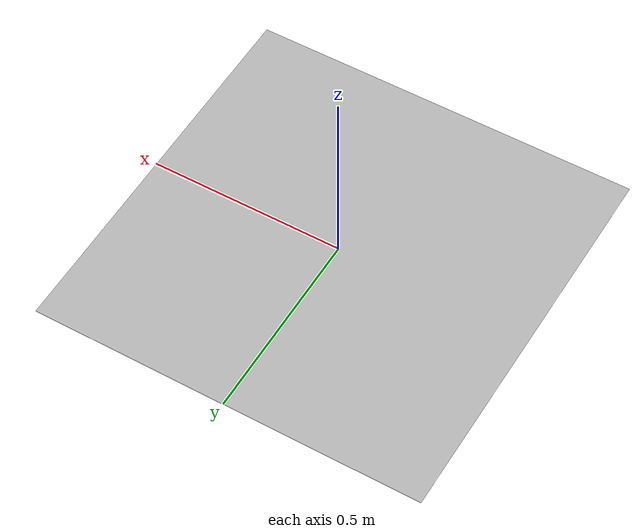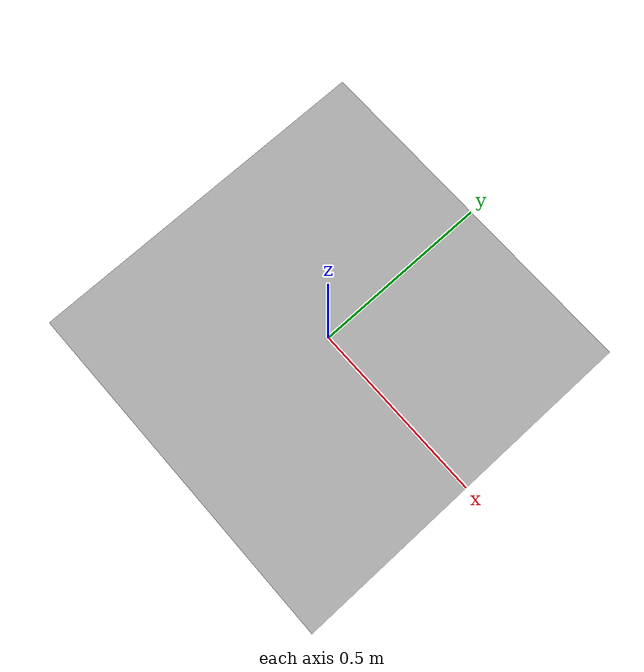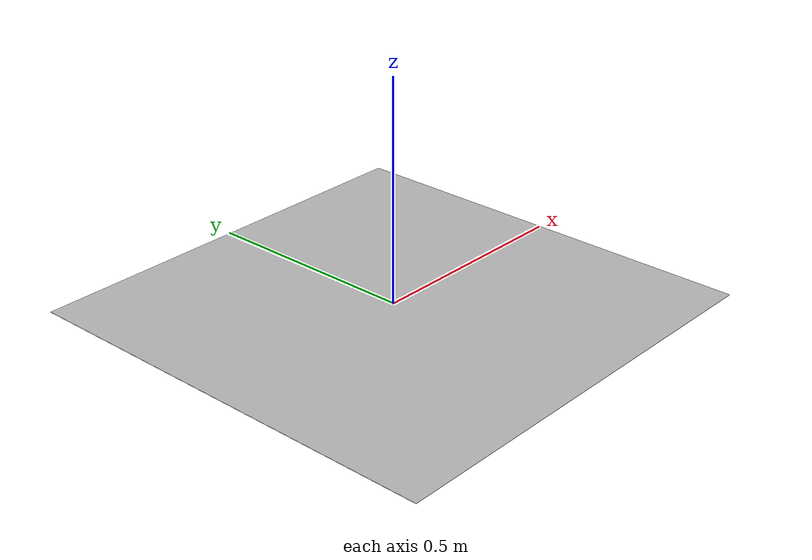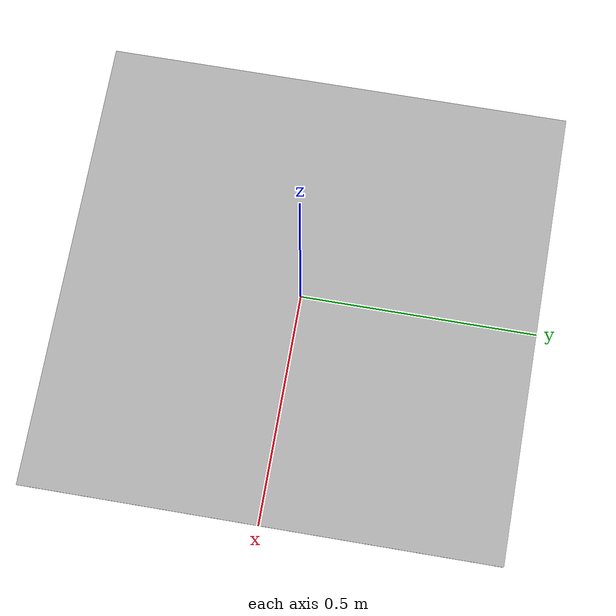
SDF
<?xml version="1.0" encoding="UTF-8" ?>
<sdf version="1.4">
  <world name="default">
    <scene>
      <ambient>0.5 0.5 0.5 1</ambient>
      <background>0.5 0.5 0.5 1</background>
      <shadows>false</shadows>
    </scene>
    <physics name='default_physics' default='0' type='ode'>
      <gravity>0 0 -9.8066</gravity>
      <ode>
        <solver>
          <type>quick</type>
          <iters>1</iters>
          <sor>1.3</sor>
          <use_dynamic_moi_rescaling>0</use_dynamic_moi_rescaling>
        </solver>
        <constraints>
          <cfm>0</cfm>
          <erp>0.2</erp>
          <contact_max_correcting_vel>100</contact_max_correcting_vel>
          <contact_surface_layer>0.001</contact_surface_layer>
        </constraints>
      </ode>
      <max_step_size>0.01</max_step_size>
      <real_time_factor>1</real_time_factor>
      <real_time_update_rate>100</real_time_update_rate>
    </physics>
    <plugin name="stopPhysics" filename="libStopPhysicsPlugin.so">
      <robotNamespace/>
    </plugin>
    <light type="directional" name="directional_light_1">
      <pose>0 20 20 0.1 0.1 0</pose>
      <diffuse>1 1 1 1</diffuse>
      <specular>1 1 1 1</specular>
      <attenuation>
        <range>300</range>
      </attenuation>
      <direction>0.1 0.1 -1</direction>
      <cast_shadows>false</cast_shadows>
    </light>
    <model name="plane_model">
      <link name="plane_model_link">
        <collision name="plane_model_collision">
          <geometry>
            <plane>
              <normal>0 0 1</normal>
            </plane>
          </geometry>
          <surface>
            <friction>
              <ode>
                <mu>10.0</mu>
                <mu2>10.0</mu2>
                <fdir1>0 0 0</fdir1>
                <slip1>0</slip1>
                <slip2>0</slip2>
              </ode>
            </friction>
            <bounce>
              <restitution_coefficient>0</restitution_coefficient>
              <threshold>1000000.0</threshold>
            </bounce>
            <contact>
              <ode>
                <soft_cfm>0</soft_cfm>
                <soft_erp>0.2</soft_erp>
                <kp>1e10</kp>
                <kd>1</kd>
                <max_vel>100.0</max_vel>
                <min_depth>0.0001</min_depth>
              </ode>
            </contact>
          </surface>
        </collision>
        <visual name="plane_model_visual">
          <geometry>
            <plane>
              <normal>0 0 1</normal>
            </plane>
          </geometry>
          <material>
            <script>Gazebo/Grey</script>
          </material>
          <cast_shadows>false</cast_shadows>
        </visual>
      </link>
      <static>true</static>
    </model>
    <model name="sick_robot_day_2012_20m">
      <link name="sick_robot_day_2012_20m_link">
        <pose>0 0 0 0 0 0</pose>
        <collision name="sick_robot_day_2012_20m_collision">
          <geometry>
            <mesh>
              <uri>file://sick_robot_day_2012_20m.dae</uri>
              <scale>1 1 1</scale>
            </mesh>
          </geometry>
        </collision>
        <visual name="sick_robot_day_2012_20m">
          <geometry>
            <mesh>
              <uri>file://sick_robot_day_2012_20m.dae</uri>
              <scale>1 1 1</scale>
            </mesh>
          </geometry>
          <cast_shadows>false</cast_shadows>
        </visual>
      </link>
      <static>true</static>
    </model>
  </world>
</sdf>
